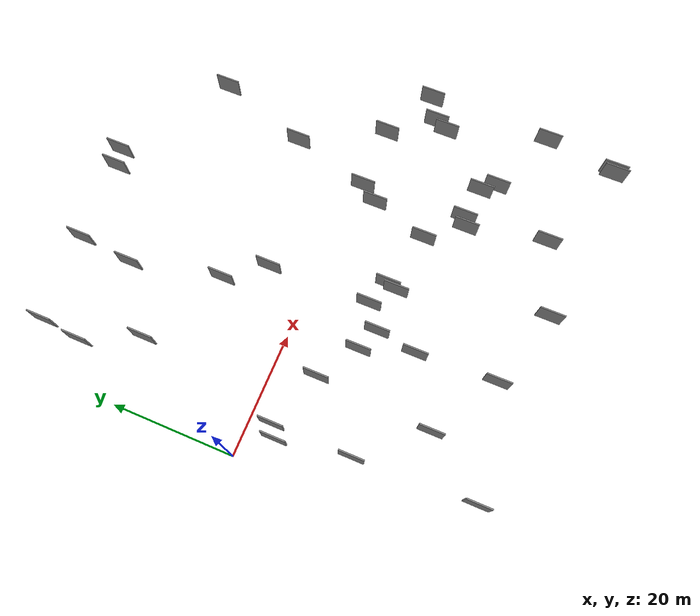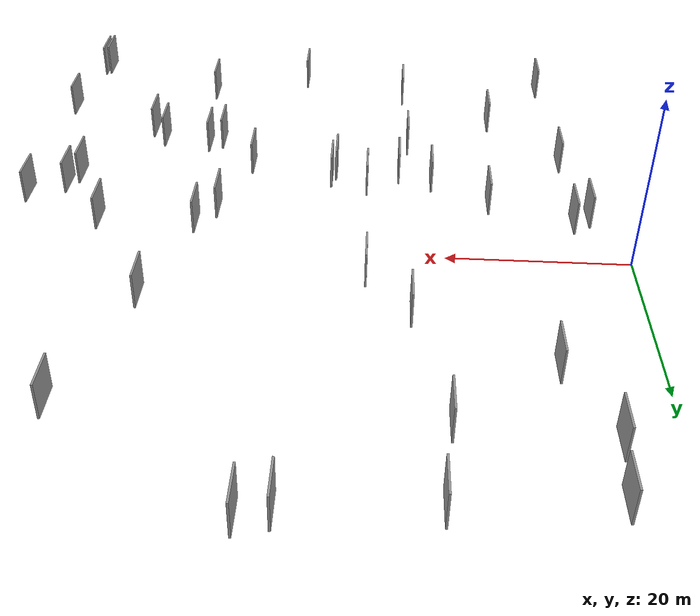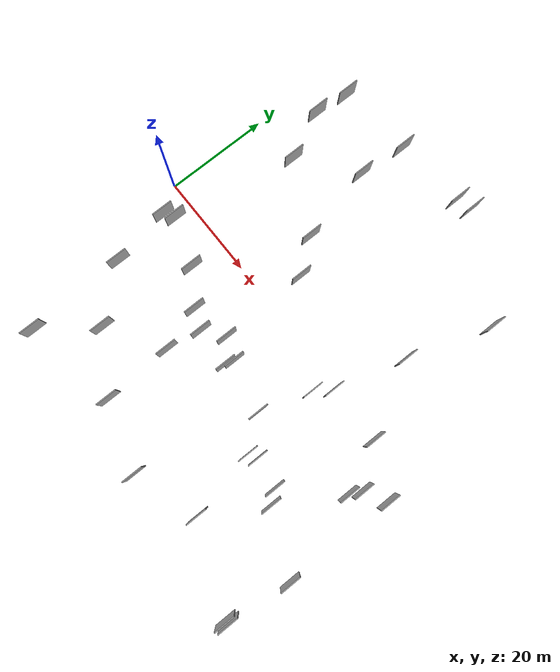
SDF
<sdf version="1.6">
 <world name="default">
  <scene>
   <sky><clouds><speed>12</speed></clouds></sky>
   <ambient>0.4 0.4 0.4 1</ambient>
   <background>0.7 0.7 0.7 1</background>
   <shadows>1</shadows>
  </scene>
  <gravity>0 0 -9.8066</gravity>
  <magnetic_field>6e-06 2.3e-05 -4.2e-05</magnetic_field>
  <physics default="0" name="default_physics" type="ode">
   <ode>
    <solver>
     <type>quick</type>
     <iters>10</iters>
     <sor>1.0</sor>
     <use_dynamic_moi_rescaling>0</use_dynamic_moi_rescaling>
    </solver>
    <constraints>
     <cfm>0</cfm>
     <erp>0.2</erp>
     <contact_max_correcting_vel>100</contact_max_correcting_vel>
     <contact_surface_layer>0.001</contact_surface_layer>
    </constraints>
   </ode>
   <max_step_size>0.004</max_step_size>
   <real_time_factor>1</real_time_factor>
   <real_time_update_rate>250</real_time_update_rate>
  </physics>
  <light name="sun" type="directional">
   <pose>0 0 10 0 0 0</pose>
   <diffuse>0.8 0.8 0.8 1</diffuse>
   <specular>0.2 0.2 0.2 1</specular>
   <attenuation>
    <range>1000</range>
    <constant>0.9</constant>
    <linear>0.01</linear>
    <quadratic>0.001</quadratic>
   </attenuation>
   <direction>-0.5 0.1 -0.9</direction>
  </light>
  <model name="grey_wall_1">
   <static>1</static>
   <pose>67.3452 -6.3178 2.5 0.000000 0.000000 1.570796</pose>
   <link name="link">
    <pose>0 0 2.00 0 0 0</pose>
    <collision name="collision"><geometry><box><size>4.00 0.2 4.00</size></box></geometry></collision>
    <visual name="visual">
     <cast_shadows>0</cast_shadows>
     <geometry><box><size>4.00 0.2 4.00</size></box></geometry>
     <material>
      <script>
       <uri>model://grey_wall/materials/scripts</uri>
       <uri>model://grey_wall/materials/textures</uri>
       <name>vrc/grey_wall</name>
      </script>
     </material>
    </visual>
   </link>
  </model>
  <model name="grey_wall_2">
   <static>1</static>
   <pose>32.9440 -11.5785 2.5 0.000000 0.000000 1.570796</pose>
   <link name="link">
    <pose>0 0 2.00 0 0 0</pose>
    <collision name="collision"><geometry><box><size>4.00 0.2 4.00</size></box></geometry></collision>
    <visual name="visual">
     <cast_shadows>0</cast_shadows>
     <geometry><box><size>4.00 0.2 4.00</size></box></geometry>
     <material>
      <script>
       <uri>model://grey_wall/materials/scripts</uri>
       <uri>model://grey_wall/materials/textures</uri>
       <name>vrc/grey_wall</name>
      </script>
     </material>
    </visual>
   </link>
  </model>
  <model name="grey_wall_3">
   <static>1</static>
   <pose>21.5098 36.1997 2.5 0.000000 0.000000 1.570796</pose>
   <link name="link">
    <pose>0 0 2.00 0 0 0</pose>
    <collision name="collision"><geometry><box><size>4.00 0.2 4.00</size></box></geometry></collision>
    <visual name="visual">
     <cast_shadows>0</cast_shadows>
     <geometry><box><size>4.00 0.2 4.00</size></box></geometry>
     <material>
      <script>
       <uri>model://grey_wall/materials/scripts</uri>
       <uri>model://grey_wall/materials/textures</uri>
       <name>vrc/grey_wall</name>
      </script>
     </material>
    </visual>
   </link>
  </model>
  <model name="grey_wall_4">
   <static>1</static>
   <pose>24.1270 -19.3537 2.5 0.000000 0.000000 1.570796</pose>
   <link name="link">
    <pose>0 0 2.00 0 0 0</pose>
    <collision name="collision"><geometry><box><size>4.00 0.2 4.00</size></box></geometry></collision>
    <visual name="visual">
     <cast_shadows>0</cast_shadows>
     <geometry><box><size>4.00 0.2 4.00</size></box></geometry>
     <material>
      <script>
       <uri>model://grey_wall/materials/scripts</uri>
       <uri>model://grey_wall/materials/textures</uri>
       <name>vrc/grey_wall</name>
      </script>
     </material>
    </visual>
   </link>
  </model>
  <model name="grey_wall_5">
   <static>1</static>
   <pose>6.2242 -16.3938 2.5 0.000000 0.000000 1.570796</pose>
   <link name="link">
    <pose>0 0 2.00 0 0 0</pose>
    <collision name="collision"><geometry><box><size>4.00 0.2 4.00</size></box></geometry></collision>
    <visual name="visual">
     <cast_shadows>0</cast_shadows>
     <geometry><box><size>4.00 0.2 4.00</size></box></geometry>
     <material>
      <script>
       <uri>model://grey_wall/materials/scripts</uri>
       <uri>model://grey_wall/materials/textures</uri>
       <name>vrc/grey_wall</name>
      </script>
     </material>
    </visual>
   </link>
  </model>
  <model name="grey_wall_6">
   <static>1</static>
   <pose>10.6288 19.6014 2.5 0.000000 0.000000 1.570796</pose>
   <link name="link">
    <pose>0 0 2.00 0 0 0</pose>
    <collision name="collision"><geometry><box><size>4.00 0.2 4.00</size></box></geometry></collision>
    <visual name="visual">
     <cast_shadows>0</cast_shadows>
     <geometry><box><size>4.00 0.2 4.00</size></box></geometry>
     <material>
      <script>
       <uri>model://grey_wall/materials/scripts</uri>
       <uri>model://grey_wall/materials/textures</uri>
       <name>vrc/grey_wall</name>
      </script>
     </material>
    </visual>
   </link>
  </model>
  <model name="grey_wall_7">
   <static>1</static>
   <pose>20.6657 27.3038 2.5 0.000000 0.000000 1.570796</pose>
   <link name="link">
    <pose>0 0 2.00 0 0 0</pose>
    <collision name="collision"><geometry><box><size>4.00 0.2 4.00</size></box></geometry></collision>
    <visual name="visual">
     <cast_shadows>0</cast_shadows>
     <geometry><box><size>4.00 0.2 4.00</size></box></geometry>
     <material>
      <script>
       <uri>model://grey_wall/materials/scripts</uri>
       <uri>model://grey_wall/materials/textures</uri>
       <name>vrc/grey_wall</name>
      </script>
     </material>
    </visual>
   </link>
  </model>
  <model name="grey_wall_8">
   <static>1</static>
   <pose>53.9063 -19.5762 2.5 0.000000 0.000000 1.570796</pose>
   <link name="link">
    <pose>0 0 2.00 0 0 0</pose>
    <collision name="collision"><geometry><box><size>4.00 0.2 4.00</size></box></geometry></collision>
    <visual name="visual">
     <cast_shadows>0</cast_shadows>
     <geometry><box><size>4.00 0.2 4.00</size></box></geometry>
     <material>
      <script>
       <uri>model://grey_wall/materials/scripts</uri>
       <uri>model://grey_wall/materials/textures</uri>
       <name>vrc/grey_wall</name>
      </script>
     </material>
    </visual>
   </link>
  </model>
  <model name="grey_wall_9">
   <static>1</static>
   <pose>49.3741 -32.3429 2.5 0.000000 0.000000 1.570796</pose>
   <link name="link">
    <pose>0 0 2.00 0 0 0</pose>
    <collision name="collision"><geometry><box><size>4.00 0.2 4.00</size></box></geometry></collision>
    <visual name="visual">
     <cast_shadows>0</cast_shadows>
     <geometry><box><size>4.00 0.2 4.00</size></box></geometry>
     <material>
      <script>
       <uri>model://grey_wall/materials/scripts</uri>
       <uri>model://grey_wall/materials/textures</uri>
       <name>vrc/grey_wall</name>
      </script>
     </material>
    </visual>
   </link>
  </model>
  <model name="grey_wall_10">
   <static>1</static>
   <pose>51.0092 11.4951 2.5 0.000000 0.000000 1.570796</pose>
   <link name="link">
    <pose>0 0 2.00 0 0 0</pose>
    <collision name="collision"><geometry><box><size>4.00 0.2 4.00</size></box></geometry></collision>
    <visual name="visual">
     <cast_shadows>0</cast_shadows>
     <geometry><box><size>4.00 0.2 4.00</size></box></geometry>
     <material>
      <script>
       <uri>model://grey_wall/materials/scripts</uri>
       <uri>model://grey_wall/materials/textures</uri>
       <name>vrc/grey_wall</name>
      </script>
     </material>
    </visual>
   </link>
  </model>
  <model name="grey_wall_11">
   <static>1</static>
   <pose>62.2758 -10.6423 2.5 0.000000 0.000000 1.570796</pose>
   <link name="link">
    <pose>0 0 2.00 0 0 0</pose>
    <collision name="collision"><geometry><box><size>4.00 0.2 4.00</size></box></geometry></collision>
    <visual name="visual">
     <cast_shadows>0</cast_shadows>
     <geometry><box><size>4.00 0.2 4.00</size></box></geometry>
     <material>
      <script>
       <uri>model://grey_wall/materials/scripts</uri>
       <uri>model://grey_wall/materials/textures</uri>
       <name>vrc/grey_wall</name>
      </script>
     </material>
    </visual>
   </link>
  </model>
  <model name="grey_wall_12">
   <static>1</static>
   <pose>14.0313 -25.6488 2.5 0.000000 0.000000 1.570796</pose>
   <link name="link">
    <pose>0 0 2.00 0 0 0</pose>
    <collision name="collision"><geometry><box><size>4.00 0.2 4.00</size></box></geometry></collision>
    <visual name="visual">
     <cast_shadows>0</cast_shadows>
     <geometry><box><size>4.00 0.2 4.00</size></box></geometry>
     <material>
      <script>
       <uri>model://grey_wall/materials/scripts</uri>
       <uri>model://grey_wall/materials/textures</uri>
       <name>vrc/grey_wall</name>
      </script>
     </material>
    </visual>
   </link>
  </model>
  <model name="grey_wall_13">
   <static>1</static>
   <pose>32.4629 -13.0872 2.5 0.000000 0.000000 1.570796</pose>
   <link name="link">
    <pose>0 0 2.00 0 0 0</pose>
    <collision name="collision"><geometry><box><size>4.00 0.2 4.00</size></box></geometry></collision>
    <visual name="visual">
     <cast_shadows>0</cast_shadows>
     <geometry><box><size>4.00 0.2 4.00</size></box></geometry>
     <material>
      <script>
       <uri>model://grey_wall/materials/scripts</uri>
       <uri>model://grey_wall/materials/textures</uri>
       <name>vrc/grey_wall</name>
      </script>
     </material>
    </visual>
   </link>
  </model>
  <model name="grey_wall_14">
   <static>1</static>
   <pose>24.7097 -32.2085 2.5 0.000000 0.000000 1.570796</pose>
   <link name="link">
    <pose>0 0 2.00 0 0 0</pose>
    <collision name="collision"><geometry><box><size>4.00 0.2 4.00</size></box></geometry></collision>
    <visual name="visual">
     <cast_shadows>0</cast_shadows>
     <geometry><box><size>4.00 0.2 4.00</size></box></geometry>
     <material>
      <script>
       <uri>model://grey_wall/materials/scripts</uri>
       <uri>model://grey_wall/materials/textures</uri>
       <name>vrc/grey_wall</name>
      </script>
     </material>
    </visual>
   </link>
  </model>
  <model name="grey_wall_15">
   <static>1</static>
   <pose>37.4799 -36.4075 2.5 0.000000 0.000000 1.570796</pose>
   <link name="link">
    <pose>0 0 2.00 0 0 0</pose>
    <collision name="collision"><geometry><box><size>4.00 0.2 4.00</size></box></geometry></collision>
    <visual name="visual">
     <cast_shadows>0</cast_shadows>
     <geometry><box><size>4.00 0.2 4.00</size></box></geometry>
     <material>
      <script>
       <uri>model://grey_wall/materials/scripts</uri>
       <uri>model://grey_wall/materials/textures</uri>
       <name>vrc/grey_wall</name>
      </script>
     </material>
    </visual>
   </link>
  </model>
  <model name="grey_wall_16">
   <static>1</static>
   <pose>28.5188 6.7294 2.5 0.000000 0.000000 1.570796</pose>
   <link name="link">
    <pose>0 0 2.00 0 0 0</pose>
    <collision name="collision"><geometry><box><size>4.00 0.2 4.00</size></box></geometry></collision>
    <visual name="visual">
     <cast_shadows>0</cast_shadows>
     <geometry><box><size>4.00 0.2 4.00</size></box></geometry>
     <material>
      <script>
       <uri>model://grey_wall/materials/scripts</uri>
       <uri>model://grey_wall/materials/textures</uri>
       <name>vrc/grey_wall</name>
      </script>
     </material>
    </visual>
   </link>
  </model>
  <model name="grey_wall_17">
   <static>1</static>
   <pose>65.6974 -38.6444 2.5 0.000000 0.000000 1.570796</pose>
   <link name="link">
    <pose>0 0 2.00 0 0 0</pose>
    <collision name="collision"><geometry><box><size>4.00 0.2 4.00</size></box></geometry></collision>
    <visual name="visual">
     <cast_shadows>0</cast_shadows>
     <geometry><box><size>4.00 0.2 4.00</size></box></geometry>
     <material>
      <script>
       <uri>model://grey_wall/materials/scripts</uri>
       <uri>model://grey_wall/materials/textures</uri>
       <name>vrc/grey_wall</name>
      </script>
     </material>
    </visual>
   </link>
  </model>
  <model name="grey_wall_18">
   <static>1</static>
   <pose>23.9542 12.7164 2.5 0.000000 0.000000 1.570796</pose>
   <link name="link">
    <pose>0 0 2.00 0 0 0</pose>
    <collision name="collision"><geometry><box><size>4.00 0.2 4.00</size></box></geometry></collision>
    <visual name="visual">
     <cast_shadows>0</cast_shadows>
     <geometry><box><size>4.00 0.2 4.00</size></box></geometry>
     <material>
      <script>
       <uri>model://grey_wall/materials/scripts</uri>
       <uri>model://grey_wall/materials/textures</uri>
       <name>vrc/grey_wall</name>
      </script>
     </material>
    </visual>
   </link>
  </model>
  <model name="grey_wall_19">
   <static>1</static>
   <pose>25.1887 -12.8074 2.5 0.000000 0.000000 1.570796</pose>
   <link name="link">
    <pose>0 0 2.00 0 0 0</pose>
    <collision name="collision"><geometry><box><size>4.00 0.2 4.00</size></box></geometry></collision>
    <visual name="visual">
     <cast_shadows>0</cast_shadows>
     <geometry><box><size>4.00 0.2 4.00</size></box></geometry>
     <material>
      <script>
       <uri>model://grey_wall/materials/scripts</uri>
       <uri>model://grey_wall/materials/textures</uri>
       <name>vrc/grey_wall</name>
      </script>
     </material>
    </visual>
   </link>
  </model>
  <model name="grey_wall_20">
   <static>1</static>
   <pose>55.6439 -21.7636 2.5 0.000000 0.000000 1.570796</pose>
   <link name="link">
    <pose>0 0 2.00 0 0 0</pose>
    <collision name="collision"><geometry><box><size>4.00 0.2 4.00</size></box></geometry></collision>
    <visual name="visual">
     <cast_shadows>0</cast_shadows>
     <geometry><box><size>4.00 0.2 4.00</size></box></geometry>
     <material>
      <script>
       <uri>model://grey_wall/materials/scripts</uri>
       <uri>model://grey_wall/materials/textures</uri>
       <name>vrc/grey_wall</name>
      </script>
     </material>
    </visual>
   </link>
  </model>
  <model name="grey_wall_21">
   <static>1</static>
   <pose>7.2097 34.9283 2.5 0.000000 0.000000 1.570796</pose>
   <link name="link">
    <pose>0 0 2.00 0 0 0</pose>
    <collision name="collision"><geometry><box><size>4.00 0.2 4.00</size></box></geometry></collision>
    <visual name="visual">
     <cast_shadows>0</cast_shadows>
     <geometry><box><size>4.00 0.2 4.00</size></box></geometry>
     <material>
      <script>
       <uri>model://grey_wall/materials/scripts</uri>
       <uri>model://grey_wall/materials/textures</uri>
       <name>vrc/grey_wall</name>
      </script>
     </material>
    </visual>
   </link>
  </model>
  <model name="grey_wall_22">
   <static>1</static>
   <pose>6.9272 -35.2239 2.5 0.000000 0.000000 1.570796</pose>
   <link name="link">
    <pose>0 0 2.00 0 0 0</pose>
    <collision name="collision"><geometry><box><size>4.00 0.2 4.00</size></box></geometry></collision>
    <visual name="visual">
     <cast_shadows>0</cast_shadows>
     <geometry><box><size>4.00 0.2 4.00</size></box></geometry>
     <material>
      <script>
       <uri>model://grey_wall/materials/scripts</uri>
       <uri>model://grey_wall/materials/textures</uri>
       <name>vrc/grey_wall</name>
      </script>
     </material>
    </visual>
   </link>
  </model>
  <model name="grey_wall_23">
   <static>1</static>
   <pose>37.9741 38.0724 2.5 0.000000 0.000000 1.570796</pose>
   <link name="link">
    <pose>0 0 2.00 0 0 0</pose>
    <collision name="collision"><geometry><box><size>4.00 0.2 4.00</size></box></geometry></collision>
    <visual name="visual">
     <cast_shadows>0</cast_shadows>
     <geometry><box><size>4.00 0.2 4.00</size></box></geometry>
     <material>
      <script>
       <uri>model://grey_wall/materials/scripts</uri>
       <uri>model://grey_wall/materials/textures</uri>
       <name>vrc/grey_wall</name>
      </script>
     </material>
    </visual>
   </link>
  </model>
  <model name="grey_wall_24">
   <static>1</static>
   <pose>6.1774 -3.7912 2.5 0.000000 0.000000 1.570796</pose>
   <link name="link">
    <pose>0 0 2.00 0 0 0</pose>
    <collision name="collision"><geometry><box><size>4.00 0.2 4.00</size></box></geometry></collision>
    <visual name="visual">
     <cast_shadows>0</cast_shadows>
     <geometry><box><size>4.00 0.2 4.00</size></box></geometry>
     <material>
      <script>
       <uri>model://grey_wall/materials/scripts</uri>
       <uri>model://grey_wall/materials/textures</uri>
       <name>vrc/grey_wall</name>
      </script>
     </material>
    </visual>
   </link>
  </model>
  <model name="grey_wall_25">
   <static>1</static>
   <pose>56.0777 26.7666 2.5 0.000000 0.000000 1.570796</pose>
   <link name="link">
    <pose>0 0 2.00 0 0 0</pose>
    <collision name="collision"><geometry><box><size>4.00 0.2 4.00</size></box></geometry></collision>
    <visual name="visual">
     <cast_shadows>0</cast_shadows>
     <geometry><box><size>4.00 0.2 4.00</size></box></geometry>
     <material>
      <script>
       <uri>model://grey_wall/materials/scripts</uri>
       <uri>model://grey_wall/materials/textures</uri>
       <name>vrc/grey_wall</name>
      </script>
     </material>
    </visual>
   </link>
  </model>
  <model name="grey_wall_26">
   <static>1</static>
   <pose>15.1895 -7.0491 2.5 0.000000 0.000000 1.570796</pose>
   <link name="link">
    <pose>0 0 2.00 0 0 0</pose>
    <collision name="collision"><geometry><box><size>4.00 0.2 4.00</size></box></geometry></collision>
    <visual name="visual">
     <cast_shadows>0</cast_shadows>
     <geometry><box><size>4.00 0.2 4.00</size></box></geometry>
     <material>
      <script>
       <uri>model://grey_wall/materials/scripts</uri>
       <uri>model://grey_wall/materials/textures</uri>
       <name>vrc/grey_wall</name>
      </script>
     </material>
    </visual>
   </link>
  </model>
  <model name="grey_wall_27">
   <static>1</static>
   <pose>63.3381 -8.4888 2.5 0.000000 0.000000 1.570796</pose>
   <link name="link">
    <pose>0 0 2.00 0 0 0</pose>
    <collision name="collision"><geometry><box><size>4.00 0.2 4.00</size></box></geometry></collision>
    <visual name="visual">
     <cast_shadows>0</cast_shadows>
     <geometry><box><size>4.00 0.2 4.00</size></box></geometry>
     <material>
      <script>
       <uri>model://grey_wall/materials/scripts</uri>
       <uri>model://grey_wall/materials/textures</uri>
       <name>vrc/grey_wall</name>
      </script>
     </material>
    </visual>
   </link>
  </model>
  <model name="grey_wall_28">
   <static>1</static>
   <pose>42.3838 -13.9032 2.5 0.000000 0.000000 1.570796</pose>
   <link name="link">
    <pose>0 0 2.00 0 0 0</pose>
    <collision name="collision"><geometry><box><size>4.00 0.2 4.00</size></box></geometry></collision>
    <visual name="visual">
     <cast_shadows>0</cast_shadows>
     <geometry><box><size>4.00 0.2 4.00</size></box></geometry>
     <material>
      <script>
       <uri>model://grey_wall/materials/scripts</uri>
       <uri>model://grey_wall/materials/textures</uri>
       <name>vrc/grey_wall</name>
      </script>
     </material>
    </visual>
   </link>
  </model>
  <model name="grey_wall_29">
   <static>1</static>
   <pose>21.4581 -11.2559 2.5 0.000000 0.000000 1.570796</pose>
   <link name="link">
    <pose>0 0 2.00 0 0 0</pose>
    <collision name="collision"><geometry><box><size>4.00 0.2 4.00</size></box></geometry></collision>
    <visual name="visual">
     <cast_shadows>0</cast_shadows>
     <geometry><box><size>4.00 0.2 4.00</size></box></geometry>
     <material>
      <script>
       <uri>model://grey_wall/materials/scripts</uri>
       <uri>model://grey_wall/materials/textures</uri>
       <name>vrc/grey_wall</name>
      </script>
     </material>
    </visual>
   </link>
  </model>
  <model name="grey_wall_30">
   <static>1</static>
   <pose>45.2827 -4.4787 2.5 0.000000 0.000000 1.570796</pose>
   <link name="link">
    <pose>0 0 2.00 0 0 0</pose>
    <collision name="collision"><geometry><box><size>4.00 0.2 4.00</size></box></geometry></collision>
    <visual name="visual">
     <cast_shadows>0</cast_shadows>
     <geometry><box><size>4.00 0.2 4.00</size></box></geometry>
     <material>
      <script>
       <uri>model://grey_wall/materials/scripts</uri>
       <uri>model://grey_wall/materials/textures</uri>
       <name>vrc/grey_wall</name>
      </script>
     </material>
    </visual>
   </link>
  </model>
  <model name="grey_wall_31">
   <static>1</static>
   <pose>47.3732 -1.5423 2.5 0.000000 0.000000 1.570796</pose>
   <link name="link">
    <pose>0 0 2.00 0 0 0</pose>
    <collision name="collision"><geometry><box><size>4.00 0.2 4.00</size></box></geometry></collision>
    <visual name="visual">
     <cast_shadows>0</cast_shadows>
     <geometry><box><size>4.00 0.2 4.00</size></box></geometry>
     <material>
      <script>
       <uri>model://grey_wall/materials/scripts</uri>
       <uri>model://grey_wall/materials/textures</uri>
       <name>vrc/grey_wall</name>
      </script>
     </material>
    </visual>
   </link>
  </model>
  <model name="grey_wall_32">
   <static>1</static>
   <pose>28.8324 -10.0257 2.5 0.000000 0.000000 1.570796</pose>
   <link name="link">
    <pose>0 0 2.00 0 0 0</pose>
    <collision name="collision"><geometry><box><size>4.00 0.2 4.00</size></box></geometry></collision>
    <visual name="visual">
     <cast_shadows>0</cast_shadows>
     <geometry><box><size>4.00 0.2 4.00</size></box></geometry>
     <material>
      <script>
       <uri>model://grey_wall/materials/scripts</uri>
       <uri>model://grey_wall/materials/textures</uri>
       <name>vrc/grey_wall</name>
      </script>
     </material>
    </visual>
   </link>
  </model>
  <model name="grey_wall_33">
   <static>1</static>
   <pose>67.0963 -27.0000 2.5 0.000000 0.000000 1.570796</pose>
   <link name="link">
    <pose>0 0 2.00 0 0 0</pose>
    <collision name="collision"><geometry><box><size>4.00 0.2 4.00</size></box></geometry></collision>
    <visual name="visual">
     <cast_shadows>0</cast_shadows>
     <geometry><box><size>4.00 0.2 4.00</size></box></geometry>
     <material>
      <script>
       <uri>model://grey_wall/materials/scripts</uri>
       <uri>model://grey_wall/materials/textures</uri>
       <name>vrc/grey_wall</name>
      </script>
     </material>
    </visual>
   </link>
  </model>
  <model name="grey_wall_34">
   <static>1</static>
   <pose>35.0268 37.2952 2.5 0.000000 0.000000 1.570796</pose>
   <link name="link">
    <pose>0 0 2.00 0 0 0</pose>
    <collision name="collision"><geometry><box><size>4.00 0.2 4.00</size></box></geometry></collision>
    <visual name="visual">
     <cast_shadows>0</cast_shadows>
     <geometry><box><size>4.00 0.2 4.00</size></box></geometry>
     <material>
      <script>
       <uri>model://grey_wall/materials/scripts</uri>
       <uri>model://grey_wall/materials/textures</uri>
       <name>vrc/grey_wall</name>
      </script>
     </material>
    </visual>
   </link>
  </model>
  <model name="grey_wall_35">
   <static>1</static>
   <pose>65.1453 -38.9315 2.5 0.000000 0.000000 1.570796</pose>
   <link name="link">
    <pose>0 0 2.00 0 0 0</pose>
    <collision name="collision"><geometry><box><size>4.00 0.2 4.00</size></box></geometry></collision>
    <visual name="visual">
     <cast_shadows>0</cast_shadows>
     <geometry><box><size>4.00 0.2 4.00</size></box></geometry>
     <material>
      <script>
       <uri>model://grey_wall/materials/scripts</uri>
       <uri>model://grey_wall/materials/textures</uri>
       <name>vrc/grey_wall</name>
      </script>
     </material>
    </visual>
   </link>
  </model>
  <model name="grey_wall_36">
   <static>1</static>
   <pose>4.3324 -5.0319 2.5 0.000000 0.000000 1.570796</pose>
   <link name="link">
    <pose>0 0 2.00 0 0 0</pose>
    <collision name="collision"><geometry><box><size>4.00 0.2 4.00</size></box></geometry></collision>
    <visual name="visual">
     <cast_shadows>0</cast_shadows>
     <geometry><box><size>4.00 0.2 4.00</size></box></geometry>
     <material>
      <script>
       <uri>model://grey_wall/materials/scripts</uri>
       <uri>model://grey_wall/materials/textures</uri>
       <name>vrc/grey_wall</name>
      </script>
     </material>
    </visual>
   </link>
  </model>
  <model name="grey_wall_37">
   <static>1</static>
   <pose>6.5242 28.5190 2.5 0.000000 0.000000 1.570796</pose>
   <link name="link">
    <pose>0 0 2.00 0 0 0</pose>
    <collision name="collision"><geometry><box><size>4.00 0.2 4.00</size></box></geometry></collision>
    <visual name="visual">
     <cast_shadows>0</cast_shadows>
     <geometry><box><size>4.00 0.2 4.00</size></box></geometry>
     <material>
      <script>
       <uri>model://grey_wall/materials/scripts</uri>
       <uri>model://grey_wall/materials/textures</uri>
       <name>vrc/grey_wall</name>
      </script>
     </material>
    </visual>
   </link>
  </model>
  <model name="grey_wall_38">
   <static>1</static>
   <pose>58.1100 -1.5887 2.5 0.000000 0.000000 1.570796</pose>
   <link name="link">
    <pose>0 0 2.00 0 0 0</pose>
    <collision name="collision"><geometry><box><size>4.00 0.2 4.00</size></box></geometry></collision>
    <visual name="visual">
     <cast_shadows>0</cast_shadows>
     <geometry><box><size>4.00 0.2 4.00</size></box></geometry>
     <material>
      <script>
       <uri>model://grey_wall/materials/scripts</uri>
       <uri>model://grey_wall/materials/textures</uri>
       <name>vrc/grey_wall</name>
      </script>
     </material>
    </visual>
   </link>
  </model>
  <model name="grey_wall_39">
   <static>1</static>
   <pose>46.7117 -19.5435 2.5 0.000000 0.000000 1.570796</pose>
   <link name="link">
    <pose>0 0 2.00 0 0 0</pose>
    <collision name="collision"><geometry><box><size>4.00 0.2 4.00</size></box></geometry></collision>
    <visual name="visual">
     <cast_shadows>0</cast_shadows>
     <geometry><box><size>4.00 0.2 4.00</size></box></geometry>
     <material>
      <script>
       <uri>model://grey_wall/materials/scripts</uri>
       <uri>model://grey_wall/materials/textures</uri>
       <name>vrc/grey_wall</name>
      </script>
     </material>
    </visual>
   </link>
  </model>
  <model name="grey_wall_40">
   <static>1</static>
   <pose>48.2930 -18.7058 2.5 0.000000 0.000000 1.570796</pose>
   <link name="link">
    <pose>0 0 2.00 0 0 0</pose>
    <collision name="collision"><geometry><box><size>4.00 0.2 4.00</size></box></geometry></collision>
    <visual name="visual">
     <cast_shadows>0</cast_shadows>
     <geometry><box><size>4.00 0.2 4.00</size></box></geometry>
     <material>
      <script>
       <uri>model://grey_wall/materials/scripts</uri>
       <uri>model://grey_wall/materials/textures</uri>
       <name>vrc/grey_wall</name>
      </script>
     </material>
    </visual>
   </link>
  </model>
 </world>
</sdf>
